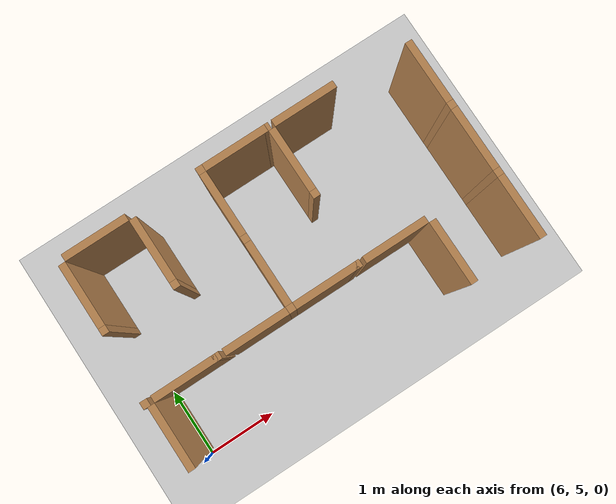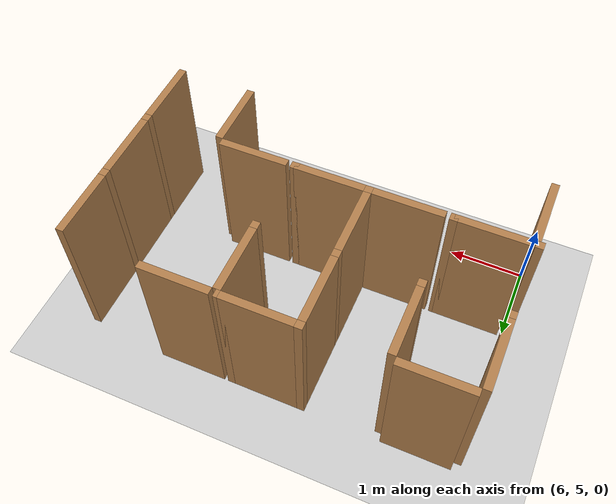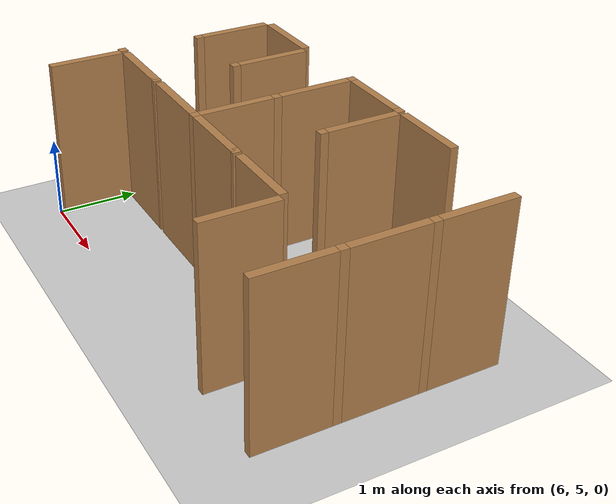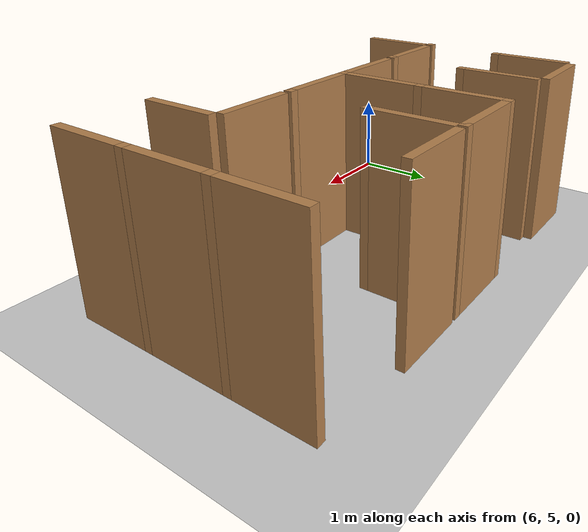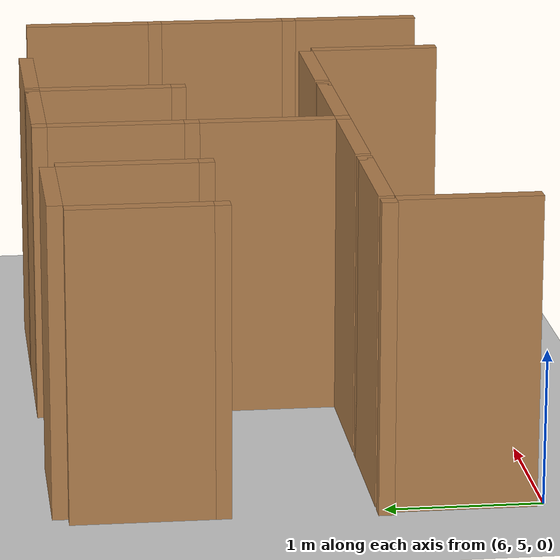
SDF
<sdf version="1.6">
 <world name="default">
  <include><uri>model://sun</uri></include>
  <model name="ground_plane">
   <static>true</static>
   <link name="link">
    <collision name="collision"><geometry><plane><size>12.0 12.0</size></plane></geometry></collision>
    <visual name="visual">
     <cast_shadows>false</cast_shadows>
     <geometry><plane><size>12.0 12.0</size></plane></geometry>
     <material>
      <script><uri>file://media/materials/scripts/gazebo.material</uri><name>Gazebo/Grey</name></script>
     </material>
    </visual>
   </link>
   <pose>6.0 6.0 0 0 0 0</pose>
  </model>
  <model name="vwall_5_6">
   <pose>6.0 5.5 1.0 0 0 0</pose>
   <link name="link">
    <collision name="collision"><geometry><box><size>0.1 0.9 2</size></box></geometry></collision>
    <visual name="visual">
     <geometry><box><size>0.1 0.9 2</size></box></geometry>
     <material>
      <script><uri>file://media/materials/scripts/gazebo.material</uri><name>Gazebo/Wood</name></script>
     </material>
    </visual>
   </link>
  </model>
  <model name="vwall_5_10">
   <pose>10.0 5.5 1.0 0 0 0</pose>
   <link name="link">
    <collision name="collision"><geometry><box><size>0.1 0.9 2</size></box></geometry></collision>
    <visual name="visual">
     <geometry><box><size>0.1 0.9 2</size></box></geometry>
     <material>
      <script><uri>file://media/materials/scripts/gazebo.material</uri><name>Gazebo/Wood</name></script>
     </material>
    </visual>
   </link>
  </model>
  <model name="vwall_5_11">
   <pose>11.0 5.5 1.0 0 0 0</pose>
   <link name="link">
    <collision name="collision"><geometry><box><size>0.1 0.9 2</size></box></geometry></collision>
    <visual name="visual">
     <geometry><box><size>0.1 0.9 2</size></box></geometry>
     <material>
      <script><uri>file://media/materials/scripts/gazebo.material</uri><name>Gazebo/Wood</name></script>
     </material>
    </visual>
   </link>
  </model>
  <model name="vwall_6_8">
   <pose>8.0 6.5 1.0 0 0 0</pose>
   <link name="link">
    <collision name="collision"><geometry><box><size>0.1 0.9 2</size></box></geometry></collision>
    <visual name="visual">
     <geometry><box><size>0.1 0.9 2</size></box></geometry>
     <material>
      <script><uri>file://media/materials/scripts/gazebo.material</uri><name>Gazebo/Wood</name></script>
     </material>
    </visual>
   </link>
  </model>
  <model name="joint_8.0_6.0">
   <pose>8.0 6.0 1.0 0 0 0</pose>
   <link name="link">
    <collision name="collision"><geometry><box><size>0.1 0.1 2</size></box></geometry></collision>
    <visual name="visual">
     <geometry><box><size>0.1 0.1 2</size></box></geometry>
     <material>
      <script><uri>file://media/materials/scripts/gazebo.material</uri><name>Gazebo/Wood</name></script>
     </material>
    </visual>
   </link>
  </model>
  <model name="vwall_6_11">
   <pose>11.0 6.5 1.0 0 0 0</pose>
   <link name="link">
    <collision name="collision"><geometry><box><size>0.1 0.9 2</size></box></geometry></collision>
    <visual name="visual">
     <geometry><box><size>0.1 0.9 2</size></box></geometry>
     <material>
      <script><uri>file://media/materials/scripts/gazebo.material</uri><name>Gazebo/Wood</name></script>
     </material>
    </visual>
   </link>
  </model>
  <model name="joint_11.0_6.0">
   <pose>11.0 6.0 1.0 0 0 0</pose>
   <link name="link">
    <collision name="collision"><geometry><box><size>0.1 0.1 2</size></box></geometry></collision>
    <visual name="visual">
     <geometry><box><size>0.1 0.1 2</size></box></geometry>
     <material>
      <script><uri>file://media/materials/scripts/gazebo.material</uri><name>Gazebo/Wood</name></script>
     </material>
    </visual>
   </link>
  </model>
  <model name="vwall_7_6">
   <pose>6.0 7.5 1.0 0 0 0</pose>
   <link name="link">
    <collision name="collision"><geometry><box><size>0.1 0.9 2</size></box></geometry></collision>
    <visual name="visual">
     <geometry><box><size>0.1 0.9 2</size></box></geometry>
     <material>
      <script><uri>file://media/materials/scripts/gazebo.material</uri><name>Gazebo/Wood</name></script>
     </material>
    </visual>
   </link>
  </model>
  <model name="joint_6.0_7.0">
   <pose>6.0 7.0 1.0 0 0 0</pose>
   <link name="link">
    <collision name="collision"><geometry><box><size>0.1 0.1 2</size></box></geometry></collision>
    <visual name="visual">
     <geometry><box><size>0.1 0.1 2</size></box></geometry>
     <material>
      <script><uri>file://media/materials/scripts/gazebo.material</uri><name>Gazebo/Wood</name></script>
     </material>
    </visual>
   </link>
  </model>
  <model name="vwall_7_7">
   <pose>7.0 7.5 1.0 0 0 0</pose>
   <link name="link">
    <collision name="collision"><geometry><box><size>0.1 0.9 2</size></box></geometry></collision>
    <visual name="visual">
     <geometry><box><size>0.1 0.9 2</size></box></geometry>
     <material>
      <script><uri>file://media/materials/scripts/gazebo.material</uri><name>Gazebo/Wood</name></script>
     </material>
    </visual>
   </link>
  </model>
  <model name="joint_7.0_7.0">
   <pose>7.0 7.0 1.0 0 0 0</pose>
   <link name="link">
    <collision name="collision"><geometry><box><size>0.1 0.1 2</size></box></geometry></collision>
    <visual name="visual">
     <geometry><box><size>0.1 0.1 2</size></box></geometry>
     <material>
      <script><uri>file://media/materials/scripts/gazebo.material</uri><name>Gazebo/Wood</name></script>
     </material>
    </visual>
   </link>
  </model>
  <model name="vwall_7_8">
   <pose>8.0 7.5 1.0 0 0 0</pose>
   <link name="link">
    <collision name="collision"><geometry><box><size>0.1 0.9 2</size></box></geometry></collision>
    <visual name="visual">
     <geometry><box><size>0.1 0.9 2</size></box></geometry>
     <material>
      <script><uri>file://media/materials/scripts/gazebo.material</uri><name>Gazebo/Wood</name></script>
     </material>
    </visual>
   </link>
  </model>
  <model name="joint_8.0_7.0">
   <pose>8.0 7.0 1.0 0 0 0</pose>
   <link name="link">
    <collision name="collision"><geometry><box><size>0.1 0.1 2</size></box></geometry></collision>
    <visual name="visual">
     <geometry><box><size>0.1 0.1 2</size></box></geometry>
     <material>
      <script><uri>file://media/materials/scripts/gazebo.material</uri><name>Gazebo/Wood</name></script>
     </material>
    </visual>
   </link>
  </model>
  <model name="vwall_7_9">
   <pose>9.0 7.5 1.0 0 0 0</pose>
   <link name="link">
    <collision name="collision"><geometry><box><size>0.1 0.9 2</size></box></geometry></collision>
    <visual name="visual">
     <geometry><box><size>0.1 0.9 2</size></box></geometry>
     <material>
      <script><uri>file://media/materials/scripts/gazebo.material</uri><name>Gazebo/Wood</name></script>
     </material>
    </visual>
   </link>
  </model>
  <model name="joint_9.0_7.0">
   <pose>9.0 7.0 1.0 0 0 0</pose>
   <link name="link">
    <collision name="collision"><geometry><box><size>0.1 0.1 2</size></box></geometry></collision>
    <visual name="visual">
     <geometry><box><size>0.1 0.1 2</size></box></geometry>
     <material>
      <script><uri>file://media/materials/scripts/gazebo.material</uri><name>Gazebo/Wood</name></script>
     </material>
    </visual>
   </link>
  </model>
  <model name="vwall_7_11">
   <pose>11.0 7.5 1.0 0 0 0</pose>
   <link name="link">
    <collision name="collision"><geometry><box><size>0.1 0.9 2</size></box></geometry></collision>
    <visual name="visual">
     <geometry><box><size>0.1 0.9 2</size></box></geometry>
     <material>
      <script><uri>file://media/materials/scripts/gazebo.material</uri><name>Gazebo/Wood</name></script>
     </material>
    </visual>
   </link>
  </model>
  <model name="joint_11.0_7.0">
   <pose>11.0 7.0 1.0 0 0 0</pose>
   <link name="link">
    <collision name="collision"><geometry><box><size>0.1 0.1 2</size></box></geometry></collision>
    <visual name="visual">
     <geometry><box><size>0.1 0.1 2</size></box></geometry>
     <material>
      <script><uri>file://media/materials/scripts/gazebo.material</uri><name>Gazebo/Wood</name></script>
     </material>
    </visual>
   </link>
  </model>
  <model name="joint_8.0_8.0">
   <pose>8.0 8.0 1.0 0 0 0</pose>
   <link name="link">
    <collision name="collision"><geometry><box><size>0.1 0.1 2</size></box></geometry></collision>
    <visual name="visual">
     <geometry><box><size>0.1 0.1 2</size></box></geometry>
     <material>
      <script><uri>file://media/materials/scripts/gazebo.material</uri><name>Gazebo/Wood</name></script>
     </material>
    </visual>
   </link>
  </model>
  <model name="joint_5.95_6.0">
   <pose>5.95 6.0 1.0 0 0 0</pose>
   <link name="link">
    <collision name="collision"><geometry><box><size>0.1 0.1 2</size></box></geometry></collision>
    <visual name="visual">
     <geometry><box><size>0.1 0.1 2</size></box></geometry>
     <material>
      <script><uri>file://media/materials/scripts/gazebo.material</uri><name>Gazebo/Wood</name></script>
     </material>
    </visual>
   </link>
  </model>
  <model name="hwall_6_6">
   <pose>6.5 6.0 1.0 0 0 0</pose>
   <link name="link">
    <collision name="collision"><geometry><box><size>0.9 0.1 2</size></box></geometry></collision>
    <visual name="visual">
     <geometry><box><size>0.9 0.1 2</size></box></geometry>
     <material>
      <script><uri>file://media/materials/scripts/gazebo.material</uri><name>Gazebo/Wood</name></script>
     </material>
    </visual>
   </link>
  </model>
  <model name="joint_6.95_6.0">
   <pose>6.95 6.0 1.0 0 0 0</pose>
   <link name="link">
    <collision name="collision"><geometry><box><size>0.1 0.1 2</size></box></geometry></collision>
    <visual name="visual">
     <geometry><box><size>0.1 0.1 2</size></box></geometry>
     <material>
      <script><uri>file://media/materials/scripts/gazebo.material</uri><name>Gazebo/Wood</name></script>
     </material>
    </visual>
   </link>
  </model>
  <model name="hwall_6_7">
   <pose>7.5 6.0 1.0 0 0 0</pose>
   <link name="link">
    <collision name="collision"><geometry><box><size>0.9 0.1 2</size></box></geometry></collision>
    <visual name="visual">
     <geometry><box><size>0.9 0.1 2</size></box></geometry>
     <material>
      <script><uri>file://media/materials/scripts/gazebo.material</uri><name>Gazebo/Wood</name></script>
     </material>
    </visual>
   </link>
  </model>
  <model name="hwall_6_8">
   <pose>8.5 6.0 1.0 0 0 0</pose>
   <link name="link">
    <collision name="collision"><geometry><box><size>0.9 0.1 2</size></box></geometry></collision>
    <visual name="visual">
     <geometry><box><size>0.9 0.1 2</size></box></geometry>
     <material>
      <script><uri>file://media/materials/scripts/gazebo.material</uri><name>Gazebo/Wood</name></script>
     </material>
    </visual>
   </link>
  </model>
  <model name="joint_8.95_6.0">
   <pose>8.95 6.0 1.0 0 0 0</pose>
   <link name="link">
    <collision name="collision"><geometry><box><size>0.1 0.1 2</size></box></geometry></collision>
    <visual name="visual">
     <geometry><box><size>0.1 0.1 2</size></box></geometry>
     <material>
      <script><uri>file://media/materials/scripts/gazebo.material</uri><name>Gazebo/Wood</name></script>
     </material>
    </visual>
   </link>
  </model>
  <model name="hwall_6_9">
   <pose>9.5 6.0 1.0 0 0 0</pose>
   <link name="link">
    <collision name="collision"><geometry><box><size>0.9 0.1 2</size></box></geometry></collision>
    <visual name="visual">
     <geometry><box><size>0.9 0.1 2</size></box></geometry>
     <material>
      <script><uri>file://media/materials/scripts/gazebo.material</uri><name>Gazebo/Wood</name></script>
     </material>
    </visual>
   </link>
  </model>
  <model name="hwall_8_6">
   <pose>6.5 8.0 1.0 0 0 0</pose>
   <link name="link">
    <collision name="collision"><geometry><box><size>0.9 0.1 2</size></box></geometry></collision>
    <visual name="visual">
     <geometry><box><size>0.9 0.1 2</size></box></geometry>
     <material>
      <script><uri>file://media/materials/scripts/gazebo.material</uri><name>Gazebo/Wood</name></script>
     </material>
    </visual>
   </link>
  </model>
  <model name="hwall_8_8">
   <pose>8.5 8.0 1.0 0 0 0</pose>
   <link name="link">
    <collision name="collision"><geometry><box><size>0.9 0.1 2</size></box></geometry></collision>
    <visual name="visual">
     <geometry><box><size>0.9 0.1 2</size></box></geometry>
     <material>
      <script><uri>file://media/materials/scripts/gazebo.material</uri><name>Gazebo/Wood</name></script>
     </material>
    </visual>
   </link>
  </model>
  <model name="joint_8.95_8.0">
   <pose>8.95 8.0 1.0 0 0 0</pose>
   <link name="link">
    <collision name="collision"><geometry><box><size>0.1 0.1 2</size></box></geometry></collision>
    <visual name="visual">
     <geometry><box><size>0.1 0.1 2</size></box></geometry>
     <material>
      <script><uri>file://media/materials/scripts/gazebo.material</uri><name>Gazebo/Wood</name></script>
     </material>
    </visual>
   </link>
  </model>
  <model name="hwall_8_9">
   <pose>9.5 8.0 1.0 0 0 0</pose>
   <link name="link">
    <collision name="collision"><geometry><box><size>0.9 0.1 2</size></box></geometry></collision>
    <visual name="visual">
     <geometry><box><size>0.9 0.1 2</size></box></geometry>
     <material>
      <script><uri>file://media/materials/scripts/gazebo.material</uri><name>Gazebo/Wood</name></script>
     </material>
    </visual>
   </link>
  </model>
 </world>
</sdf>
